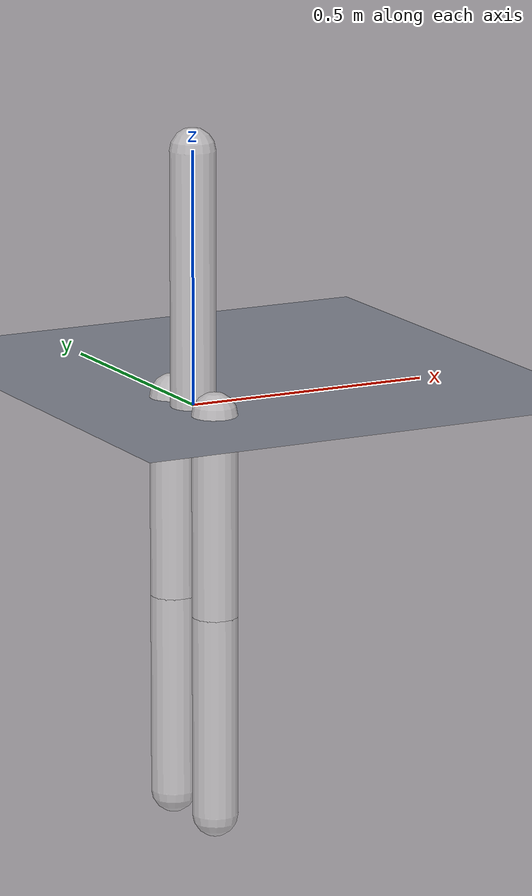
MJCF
<?xml version="1.0" encoding="utf-8"?>
<mujoco model="hotdog_man">

	<!-- Simulation Parameters -->
	<option timestep="0.01" iterations="20" ls_iterations="15" solver="Newton">
		<flag eulerdamp="disable"/>
	</option>

    <!-- Inertia is computed from geometry -->
    <compiler inertiafromgeom="true" />

	<!-- Default properties -->
    <default>
        <joint damping="0.1" armature="0.01" frictionloss="0.1"/>
    </default>

	<!-- Robot -->
	<worldbody>

        <!-- Torso -->
        <body name="torso" pos="0 0 0">
            <geom name="torso" type="capsule" size="0.045 0.25" pos="0 0 0.25" rgba="0.9 0.9 0.9 0.5" conaffinity="1" contype="1"/>
            <joint name="torso_x" type="slide" axis="1 0 0"/>
            <joint name="torso_z" type="slide" axis="0 0 1"/>
            <joint name="torso_pitch" type="hinge" axis="0 -1 0"/>

            <!-- Left leg -->
            <body name="left_thigh" pos="0 0.09 0">
                <geom name="left_thigh" type="capsule" size="0.045 0.2" pos="0 0 -0.2" rgba="0.9 0.9 0.9 0.5" conaffinity="1" contype="1"/>
                <joint name="left_hip_joint" type="hinge" axis="0 -1 0" pos="0 0 0" range="-90.0 90.0"/>

                <!-- Left Shin -->
                <body name="left_shin" pos="0 0 -0.4">
                    <geom name="left_shin" type="capsule" size="0.045 0.2" pos="0 0 -0.2" rgba="0.9 0.9 0.9 0.5" conaffinity="1" contype="1"/>
                    <joint name="left_knee_joint" type="hinge" axis="0 -1 0" pos="0 0 0" range="-140.0 0.0"/>
                </body>

            </body>

            <!-- Right leg -->
            <body name="right_thigh" pos="0 -0.09 0">
                <geom name="right_thigh" type="capsule" size="0.045 0.2" pos="0 0 -0.2" rgba="0.9 0.9 0.9 0.5" conaffinity="1" contype="1"/>
                <joint name="right_hip_joint" type="hinge" axis="0 -1 0" pos="0 0 0" range="-90.0 90.0"/>

                <!-- Right Shin -->
                <body name="right_shin" pos="0 0 -0.4">
                    <geom name="right_shin" type="capsule" size="0.045 0.2" pos="0 0 -0.2" rgba="0.9 0.9 0.9 0.5" conaffinity="1" contype="1"/>
                    <joint name="right_knee_joint" type="hinge" axis="0 -1 0" pos="0 0 0" range="-140.0 0.0"/>
                </body>

            </body>

        </body>
	</worldbody>

    <!-- Actuators -->
	<actuator>
		<motor name="hip_left_motor" joint="left_hip_joint" ctrllimited="false" ctrlrange="-1 1" gear="50"/>
    	<motor name="knee_left_motor" joint="left_knee_joint" ctrllimited="false" ctrlrange="-1 1" gear="50"/>
		<motor name="hip_right_motor" joint="right_hip_joint" ctrllimited="false" ctrlrange="-1 1" gear="50"/>
		<motor name="knee_right_motor" joint="right_knee_joint" ctrllimited="false" ctrlrange="-1 1" gear="50"/>
	</actuator>

    <!-- default configuration (when you press "Load key" button) -->
    <keyframe>
        <key name="default" qpos="0 0.85 0 0 0 0 0" qvel="0 0 0 0 0 0 0"/>
        <key name="standing" qpos="0 0.82 0 0.33 -0.269 -0.0471 -0.305" qvel="0 0 0 0 0 0 0"/>
    </keyframe>

    <!-- Specify the light settings -->
    <asset>
        <texture type="skybox" builtin="flat" rgb1="0 0 0" rgb2="0 0 0" width="512" height="3072"/>
        <texture type="2d" name="groundplane" builtin="checker" mark="edge" rgb1="0.2 0.3 0.4" rgb2="0.1 0.2 0.3" markrgb="0.9 0.9 0.9" width="300" height="300"/>
        <material name="groundplane" texture="groundplane" texuniform="true" texrepeat="5 5" reflectance="0.2"/>
    </asset>

    <worldbody>
        <!-- Add light -->
        <light pos="1.0 0.5 0.0" dir="0 0 -1" directional="true"/>

        <!-- Add the Floor -->
        <geom name="floor" size="0 0 0.05" type="plane" material="groundplane"/>
    </worldbody>

</mujoco>
